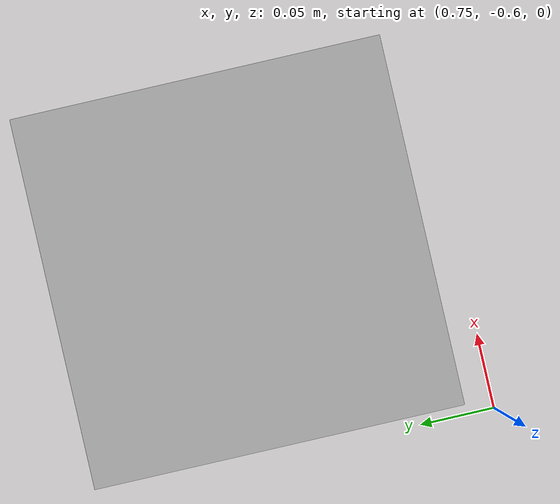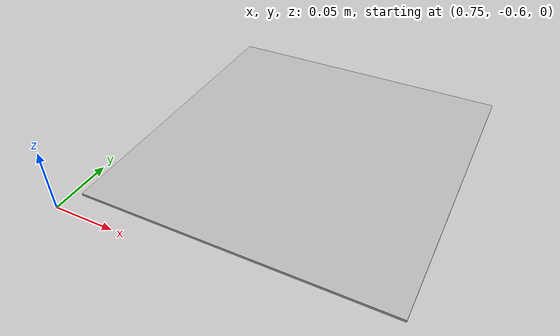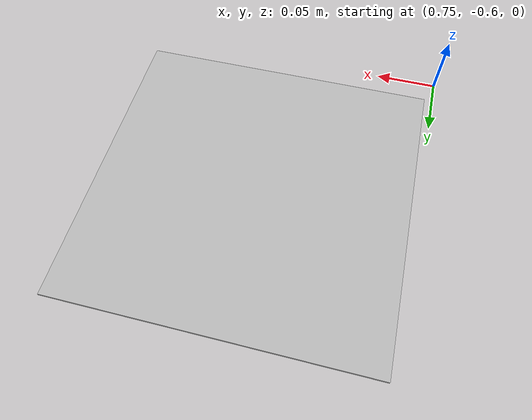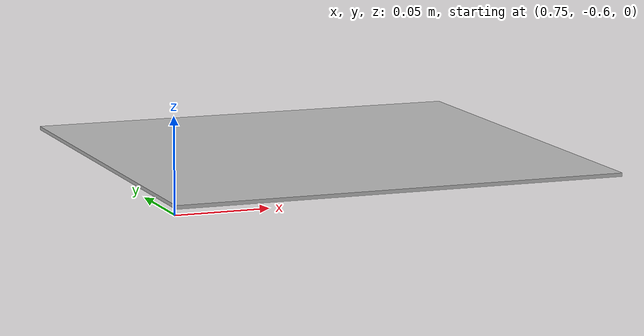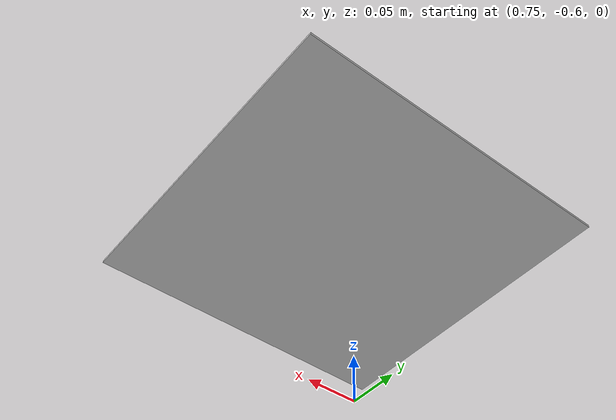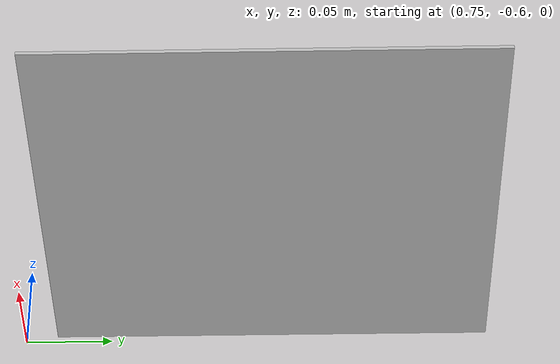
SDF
<?xml version="1.0" ?>
<sdf version="1.5">
    <model name='road_diag_new'>
      <static>1</static>
      <link name='link'>
        <collision name='collision'>
          <geometry>
            <box>
              <size>0.25 0.25 0.002</size>
            </box>
          </geometry>
          <max_contacts>10</max_contacts>
          <surface>
            <contact>
              <ode/>
            </contact>
            <bounce/>
            <friction>
              <ode/>
            </friction>
          </surface>
        </collision>
        <visual name='visual'>
          <cast_shadows>0</cast_shadows>
          <geometry>
            <box>
              <size>0.25 0.25 0.002</size>
            </box>
          </geometry>
          <material>
            <script>
              <uri>model://road_diag_new/materials/scripts</uri>
              <uri>model://road_diag_new/materials/textures</uri>
              <name>vrc/diag</name>
            </script>
          </material>
        </visual>
        <self_collide>0</self_collide>
        <kinematic>0</kinematic>
        <gravity>1</gravity>
      </link>
      <pose> 0.881619 -0.456298 0 0 -0 0</pose>
    </model>
</sdf>
